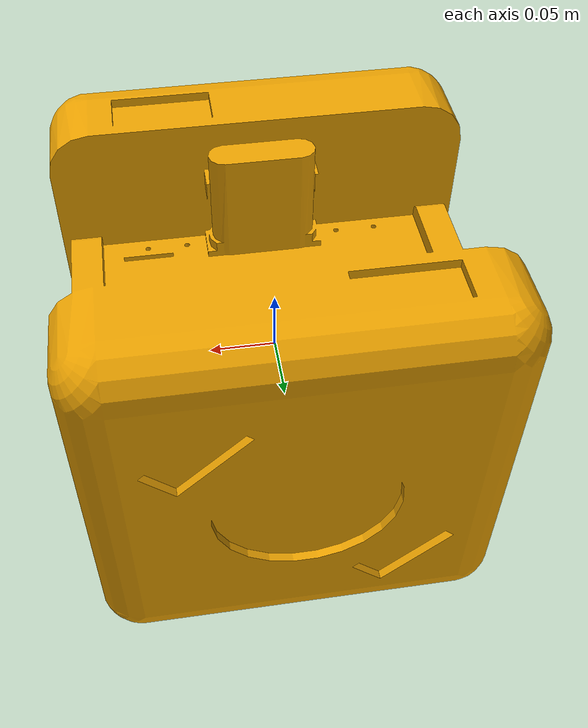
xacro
<?xml version="1.0"?>

<!-- Copyright (c) 2017, United States Government, as represented by the     -->
<!-- Administrator of the National Aeronautics and Space Administration.     -->
<!-- All rights reserved.                                                    -->
<!-- The Astrobee platform is licensed under the Apache License, Version 2.0 -->
<!-- (the "License"); you may not use this file except in compliance with    -->
<!-- the License. You may obtain a copy of the License at                    -->
<!--     http://www.apache.org/licenses/LICENSE-2.0                          -->
<!-- Unless required by applicable law or agreed to in writing, software     -->
<!-- distributed under the License is distributed on an "AS IS" BASIS,       -->
<!-- WITHOUT WARRANTIES OR CONDITIONS OF ANY KIND, either express or         -->
<!-- implied. See the License for the specific language governing            -->
<!-- permissions and limitations under the License.                          -->

<robot xmlns:xacro="http://www.ros.org/wiki/xacro">
  <link name="body">
    <inertial>
      <mass value="7.0"/>
      <origin xyz="0 0 0"/>
      <inertia ixx="0.1083" ixy="0.0" ixz="0.0" iyy="0.1083" iyz="0.0" izz="0.1083"/>
    </inertial>
    <visual name="body_visual">
      <origin xyz="0 0 0" rpy="0 0 0" />
      <geometry>
        <mesh filename="package://astrobee_gazebo/media/meshes/astrobee.dae"/>
      </geometry>
    </visual>
    <collision name="body_collision">
      <origin xyz="0 0 0" rpy="0 0 0" />
      <geometry>
        <box size="0.3048 0.3048 0.3048" />
      </geometry>
    </collision>
  </link>
</robot>
